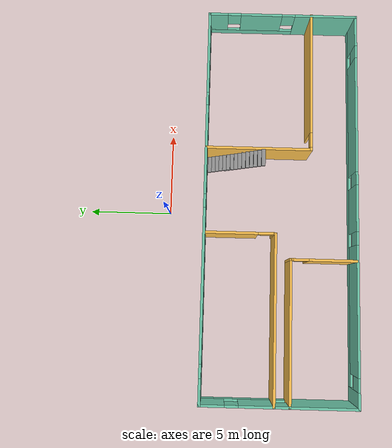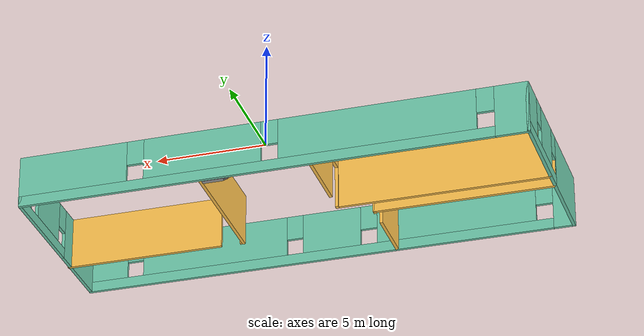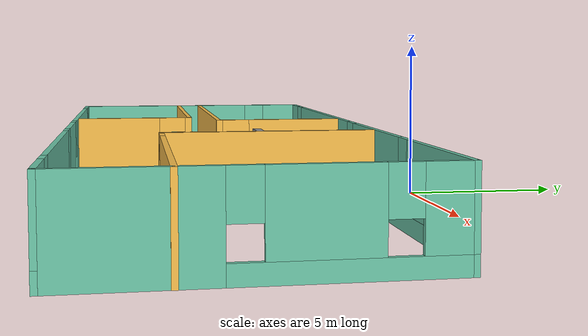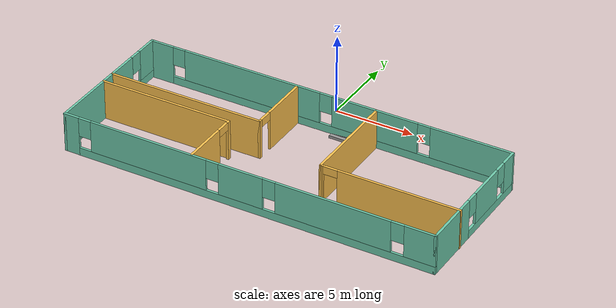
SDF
<?xml version='1.0'?>
<sdf version='1.6'>
  <model name='threeRooms'>
    <pose frame=''>0.591156 -6.7339 0 0 -0 0</pose>
    <link name='Stairs_1'>
      <visual name='Stairs_1_Visual_0'>
        <pose frame=''>2.65595 4.34252 0.083333 0 -0 0</pose>
        <geometry>
          <box>
            <size>1 0.233333 0.166667</size>
          </box>
        </geometry>
        <material>
          <script>
            <uri>file://media/materials/scripts/gazebo.material</uri>
            <name>Gazebo/Grey</name>
          </script>
          <ambient>1 1 1 1</ambient>
        </material>
        <meta>
          <layer>0</layer>
        </meta>
      </visual>
      <collision name='Stairs_1_Collision_0'>
        <geometry>
          <box>
            <size>1 0.233333 0.166667</size>
          </box>
        </geometry>
        <pose frame=''>2.65595 4.34252 0.083333 0 -0 0</pose>
      </collision>
      <visual name='Stairs_1_Visual_1'>
        <pose frame=''>2.65595 4.10918 0.25 0 -0 0</pose>
        <geometry>
          <box>
            <size>1 0.233333 0.166667</size>
          </box>
        </geometry>
        <material>
          <script>
            <uri>file://media/materials/scripts/gazebo.material</uri>
            <name>Gazebo/Grey</name>
          </script>
          <ambient>1 1 1 1</ambient>
        </material>
        <meta>
          <layer>0</layer>
        </meta>
      </visual>
      <collision name='Stairs_1_Collision_1'>
        <geometry>
          <box>
            <size>1 0.233333 0.166667</size>
          </box>
        </geometry>
        <pose frame=''>2.65595 4.10918 0.25 0 -0 0</pose>
      </collision>
      <visual name='Stairs_1_Visual_2'>
        <pose frame=''>2.65595 3.87585 0.416667 0 -0 0</pose>
        <geometry>
          <box>
            <size>1 0.233333 0.166667</size>
          </box>
        </geometry>
        <material>
          <script>
            <uri>file://media/materials/scripts/gazebo.material</uri>
            <name>Gazebo/Grey</name>
          </script>
          <ambient>1 1 1 1</ambient>
        </material>
        <meta>
          <layer>0</layer>
        </meta>
      </visual>
      <collision name='Stairs_1_Collision_2'>
        <geometry>
          <box>
            <size>1 0.233333 0.166667</size>
          </box>
        </geometry>
        <pose frame=''>2.65595 3.87585 0.416667 0 -0 0</pose>
      </collision>
      <visual name='Stairs_1_Visual_3'>
        <pose frame=''>2.65595 3.64252 0.583333 0 -0 0</pose>
        <geometry>
          <box>
            <size>1 0.233333 0.166667</size>
          </box>
        </geometry>
        <material>
          <script>
            <uri>file://media/materials/scripts/gazebo.material</uri>
            <name>Gazebo/Grey</name>
          </script>
          <ambient>1 1 1 1</ambient>
        </material>
        <meta>
          <layer>0</layer>
        </meta>
      </visual>
      <collision name='Stairs_1_Collision_3'>
        <geometry>
          <box>
            <size>1 0.233333 0.166667</size>
          </box>
        </geometry>
        <pose frame=''>2.65595 3.64252 0.583333 0 -0 0</pose>
      </collision>
      <visual name='Stairs_1_Visual_4'>
        <pose frame=''>2.65595 3.40918 0.75 0 -0 0</pose>
        <geometry>
          <box>
            <size>1 0.233333 0.166667</size>
          </box>
        </geometry>
        <material>
          <script>
            <uri>file://media/materials/scripts/gazebo.material</uri>
            <name>Gazebo/Grey</name>
          </script>
          <ambient>1 1 1 1</ambient>
        </material>
        <meta>
          <layer>0</layer>
        </meta>
      </visual>
      <collision name='Stairs_1_Collision_4'>
        <geometry>
          <box>
            <size>1 0.233333 0.166667</size>
          </box>
        </geometry>
        <pose frame=''>2.65595 3.40918 0.75 0 -0 0</pose>
      </collision>
      <visual name='Stairs_1_Visual_5'>
        <pose frame=''>2.65595 3.17585 0.916667 0 -0 0</pose>
        <geometry>
          <box>
            <size>1 0.233333 0.166667</size>
          </box>
        </geometry>
        <material>
          <script>
            <uri>file://media/materials/scripts/gazebo.material</uri>
            <name>Gazebo/Grey</name>
          </script>
          <ambient>1 1 1 1</ambient>
        </material>
        <meta>
          <layer>0</layer>
        </meta>
      </visual>
      <collision name='Stairs_1_Collision_5'>
        <geometry>
          <box>
            <size>1 0.233333 0.166667</size>
          </box>
        </geometry>
        <pose frame=''>2.65595 3.17585 0.916667 0 -0 0</pose>
      </collision>
      <visual name='Stairs_1_Visual_6'>
        <pose frame=''>2.65595 2.94252 1.08333 0 -0 0</pose>
        <geometry>
          <box>
            <size>1 0.233333 0.166667</size>
          </box>
        </geometry>
        <material>
          <script>
            <uri>file://media/materials/scripts/gazebo.material</uri>
            <name>Gazebo/Grey</name>
          </script>
          <ambient>1 1 1 1</ambient>
        </material>
        <meta>
          <layer>0</layer>
        </meta>
      </visual>
      <collision name='Stairs_1_Collision_6'>
        <geometry>
          <box>
            <size>1 0.233333 0.166667</size>
          </box>
        </geometry>
        <pose frame=''>2.65595 2.94252 1.08333 0 -0 0</pose>
      </collision>
      <visual name='Stairs_1_Visual_7'>
        <pose frame=''>2.65595 2.70918 1.25 0 -0 0</pose>
        <geometry>
          <box>
            <size>1 0.233333 0.166667</size>
          </box>
        </geometry>
        <material>
          <script>
            <uri>file://media/materials/scripts/gazebo.material</uri>
            <name>Gazebo/Grey</name>
          </script>
          <ambient>1 1 1 1</ambient>
        </material>
        <meta>
          <layer>0</layer>
        </meta>
      </visual>
      <collision name='Stairs_1_Collision_7'>
        <geometry>
          <box>
            <size>1 0.233333 0.166667</size>
          </box>
        </geometry>
        <pose frame=''>2.65595 2.70918 1.25 0 -0 0</pose>
      </collision>
      <visual name='Stairs_1_Visual_8'>
        <pose frame=''>2.65595 2.47585 1.41667 0 -0 0</pose>
        <geometry>
          <box>
            <size>1 0.233333 0.166667</size>
          </box>
        </geometry>
        <material>
          <script>
            <uri>file://media/materials/scripts/gazebo.material</uri>
            <name>Gazebo/Grey</name>
          </script>
          <ambient>1 1 1 1</ambient>
        </material>
        <meta>
          <layer>0</layer>
        </meta>
      </visual>
      <collision name='Stairs_1_Collision_8'>
        <geometry>
          <box>
            <size>1 0.233333 0.166667</size>
          </box>
        </geometry>
        <pose frame=''>2.65595 2.47585 1.41667 0 -0 0</pose>
      </collision>
      <visual name='Stairs_1_Visual_9'>
        <pose frame=''>2.65595 2.24252 1.58333 0 -0 0</pose>
        <geometry>
          <box>
            <size>1 0.233333 0.166667</size>
          </box>
        </geometry>
        <material>
          <script>
            <uri>file://media/materials/scripts/gazebo.material</uri>
            <name>Gazebo/Grey</name>
          </script>
          <ambient>1 1 1 1</ambient>
        </material>
        <meta>
          <layer>0</layer>
        </meta>
      </visual>
      <collision name='Stairs_1_Collision_9'>
        <geometry>
          <box>
            <size>1 0.233333 0.166667</size>
          </box>
        </geometry>
        <pose frame=''>2.65595 2.24252 1.58333 0 -0 0</pose>
      </collision>
      <visual name='Stairs_1_Visual_10'>
        <pose frame=''>2.65595 2.00918 1.75 0 -0 0</pose>
        <geometry>
          <box>
            <size>1 0.233333 0.166667</size>
          </box>
        </geometry>
        <material>
          <script>
            <uri>file://media/materials/scripts/gazebo.material</uri>
            <name>Gazebo/Grey</name>
          </script>
          <ambient>1 1 1 1</ambient>
        </material>
        <meta>
          <layer>0</layer>
        </meta>
      </visual>
      <collision name='Stairs_1_Collision_10'>
        <geometry>
          <box>
            <size>1 0.233333 0.166667</size>
          </box>
        </geometry>
        <pose frame=''>2.65595 2.00918 1.75 0 -0 0</pose>
      </collision>
      <visual name='Stairs_1_Visual_11'>
        <pose frame=''>2.65595 1.77585 1.91667 0 -0 0</pose>
        <geometry>
          <box>
            <size>1 0.233333 0.166667</size>
          </box>
        </geometry>
        <material>
          <script>
            <uri>file://media/materials/scripts/gazebo.material</uri>
            <name>Gazebo/Grey</name>
          </script>
          <ambient>1 1 1 1</ambient>
        </material>
        <meta>
          <layer>0</layer>
        </meta>
      </visual>
      <collision name='Stairs_1_Collision_11'>
        <geometry>
          <box>
            <size>1 0.233333 0.166667</size>
          </box>
        </geometry>
        <pose frame=''>2.65595 1.77585 1.91667 0 -0 0</pose>
      </collision>
      <visual name='Stairs_1_Visual_12'>
        <pose frame=''>2.65595 1.54252 2.08333 0 -0 0</pose>
        <geometry>
          <box>
            <size>1 0.233333 0.166667</size>
          </box>
        </geometry>
        <material>
          <script>
            <uri>file://media/materials/scripts/gazebo.material</uri>
            <name>Gazebo/Grey</name>
          </script>
          <ambient>1 1 1 1</ambient>
        </material>
        <meta>
          <layer>0</layer>
        </meta>
      </visual>
      <collision name='Stairs_1_Collision_12'>
        <geometry>
          <box>
            <size>1 0.233333 0.166667</size>
          </box>
        </geometry>
        <pose frame=''>2.65595 1.54252 2.08333 0 -0 0</pose>
      </collision>
      <visual name='Stairs_1_Visual_13'>
        <pose frame=''>2.65595 1.30918 2.25 0 -0 0</pose>
        <geometry>
          <box>
            <size>1 0.233333 0.166667</size>
          </box>
        </geometry>
        <material>
          <script>
            <uri>file://media/materials/scripts/gazebo.material</uri>
            <name>Gazebo/Grey</name>
          </script>
          <ambient>1 1 1 1</ambient>
        </material>
        <meta>
          <layer>0</layer>
        </meta>
      </visual>
      <collision name='Stairs_1_Collision_13'>
        <geometry>
          <box>
            <size>1 0.233333 0.166667</size>
          </box>
        </geometry>
        <pose frame=''>2.65595 1.30918 2.25 0 -0 0</pose>
      </collision>
      <visual name='Stairs_1_Visual_14'>
        <pose frame=''>2.65595 1.07585 2.41667 0 -0 0</pose>
        <geometry>
          <box>
            <size>1 0.233333 0.166667</size>
          </box>
        </geometry>
        <material>
          <script>
            <uri>file://media/materials/scripts/gazebo.material</uri>
            <name>Gazebo/Grey</name>
          </script>
          <ambient>1 1 1 1</ambient>
        </material>
        <meta>
          <layer>0</layer>
        </meta>
      </visual>
      <collision name='Stairs_1_Collision_14'>
        <geometry>
          <box>
            <size>1 0.233333 0.166667</size>
          </box>
        </geometry>
        <pose frame=''>2.65595 1.07585 2.41667 0 -0 0</pose>
      </collision>
    </link>
    <link name='Wall_40'>
      <pose frame=''>-0.014556 -4.55 0 0 -0 0</pose>
      <visual name='Wall_40_Visual_0'>
        <pose frame=''>-11.3725 0 1.25 0 -0 0</pose>
        <geometry>
          <box>
            <size>1.00501 0.15 2.5</size>
          </box>
        </geometry>
        <material>
          <script>
            <uri>file://media/materials/scripts/gazebo.material</uri>
            <name>Gazebo/Grey</name>
          </script>
          <ambient>0.435294 0.796078 0.67451 1</ambient>
        </material>
        <meta>
          <layer>0</layer>
        </meta>
      </visual>
      <collision name='Wall_40_Collision_0'>
        <geometry>
          <box>
            <size>1.00501 0.15 2.5</size>
          </box>
        </geometry>
        <pose frame=''>-11.3725 0 1.25 0 -0 0</pose>
      </collision>
      <visual name='Wall_40_Visual_1'>
        <pose frame=''>0.502505 0 0.25 0 -0 0</pose>
        <geometry>
          <box>
            <size>22.745 0.15 0.5</size>
          </box>
        </geometry>
        <material>
          <script>
            <uri>file://media/materials/scripts/gazebo.material</uri>
            <name>Gazebo/Grey</name>
          </script>
          <ambient>0.435294 0.796078 0.67451 1</ambient>
        </material>
        <meta>
          <layer>0</layer>
        </meta>
      </visual>
      <collision name='Wall_40_Collision_1'>
        <geometry>
          <box>
            <size>22.745 0.15 0.5</size>
          </box>
        </geometry>
        <pose frame=''>0.502505 0 0.25 0 -0 0</pose>
      </collision>
      <visual name='Wall_40_Visual_2'>
        <pose frame=''>-6.26716 0 1.5 0 -0 0</pose>
        <geometry>
          <box>
            <size>7.60566 0.15 2</size>
          </box>
        </geometry>
        <material>
          <script>
            <uri>file://media/materials/scripts/gazebo.material</uri>
            <name>Gazebo/Grey</name>
          </script>
          <ambient>0.435294 0.796078 0.67451 1</ambient>
        </material>
        <meta>
          <layer>0</layer>
        </meta>
      </visual>
      <collision name='Wall_40_Collision_2'>
        <geometry>
          <box>
            <size>7.60566 0.15 2</size>
          </box>
        </geometry>
        <pose frame=''>-6.26716 0 1.5 0 -0 0</pose>
      </collision>
      <visual name='Wall_40_Visual_3'>
        <pose frame=''>-0.255514 0 1.5 0 -0 0</pose>
        <geometry>
          <box>
            <size>2.81763 0.15 2</size>
          </box>
        </geometry>
        <material>
          <script>
            <uri>file://media/materials/scripts/gazebo.material</uri>
            <name>Gazebo/Grey</name>
          </script>
          <ambient>0.435294 0.796078 0.67451 1</ambient>
        </material>
        <meta>
          <layer>0</layer>
        </meta>
      </visual>
      <collision name='Wall_40_Collision_3'>
        <geometry>
          <box>
            <size>2.81763 0.15 2</size>
          </box>
        </geometry>
        <pose frame=''>-0.255514 0 1.5 0 -0 0</pose>
      </collision>
      <visual name='Wall_40_Visual_4'>
        <pose frame=''>5.54333 0 1.5 0 -0 0</pose>
        <geometry>
          <box>
            <size>7.18006 0.15 2</size>
          </box>
        </geometry>
        <material>
          <script>
            <uri>file://media/materials/scripts/gazebo.material</uri>
            <name>Gazebo/Grey</name>
          </script>
          <ambient>0.435294 0.796078 0.67451 1</ambient>
        </material>
        <meta>
          <layer>0</layer>
        </meta>
      </visual>
      <collision name='Wall_40_Collision_4'>
        <geometry>
          <box>
            <size>7.18006 0.15 2</size>
          </box>
        </geometry>
        <pose frame=''>5.54333 0 1.5 0 -0 0</pose>
      </collision>
      <visual name='Wall_40_Visual_5'>
        <pose frame=''>10.9042 0 1.5 0 -0 0</pose>
        <geometry>
          <box>
            <size>1.94164 0.15 2</size>
          </box>
        </geometry>
        <material>
          <script>
            <uri>file://media/materials/scripts/gazebo.material</uri>
            <name>Gazebo/Grey</name>
          </script>
          <ambient>0.435294 0.796078 0.67451 1</ambient>
        </material>
        <meta>
          <layer>0</layer>
        </meta>
      </visual>
      <collision name='Wall_40_Collision_5'>
        <geometry>
          <box>
            <size>1.94164 0.15 2</size>
          </box>
        </geometry>
        <pose frame=''>10.9042 0 1.5 0 -0 0</pose>
      </collision>
      <visual name='Wall_40_Visual_6'>
        <pose frame=''>-10.47 0 1.9 0 -0 0</pose>
        <geometry>
          <box>
            <size>0.8 0.15 1.2</size>
          </box>
        </geometry>
        <material>
          <script>
            <uri>file://media/materials/scripts/gazebo.material</uri>
            <name>Gazebo/Grey</name>
          </script>
          <ambient>0.435294 0.796078 0.67451 1</ambient>
        </material>
        <meta>
          <layer>0</layer>
        </meta>
      </visual>
      <collision name='Wall_40_Collision_6'>
        <geometry>
          <box>
            <size>0.8 0.15 1.2</size>
          </box>
        </geometry>
        <pose frame=''>-10.47 0 1.9 0 -0 0</pose>
      </collision>
      <visual name='Wall_40_Visual_7'>
        <pose frame=''>-2.06433 0 1.9 0 -0 0</pose>
        <geometry>
          <box>
            <size>0.8 0.15 1.2</size>
          </box>
        </geometry>
        <material>
          <script>
            <uri>file://media/materials/scripts/gazebo.material</uri>
            <name>Gazebo/Grey</name>
          </script>
          <ambient>0.435294 0.796078 0.67451 1</ambient>
        </material>
        <meta>
          <layer>0</layer>
        </meta>
      </visual>
      <collision name='Wall_40_Collision_7'>
        <geometry>
          <box>
            <size>0.8 0.15 1.2</size>
          </box>
        </geometry>
        <pose frame=''>-2.06433 0 1.9 0 -0 0</pose>
      </collision>
      <visual name='Wall_40_Visual_8'>
        <pose frame=''>1.5533 0 1.9 0 -0 0</pose>
        <geometry>
          <box>
            <size>0.8 0.15 1.2</size>
          </box>
        </geometry>
        <material>
          <script>
            <uri>file://media/materials/scripts/gazebo.material</uri>
            <name>Gazebo/Grey</name>
          </script>
          <ambient>0.435294 0.796078 0.67451 1</ambient>
        </material>
        <meta>
          <layer>0</layer>
        </meta>
      </visual>
      <collision name='Wall_40_Collision_8'>
        <geometry>
          <box>
            <size>0.8 0.15 1.2</size>
          </box>
        </geometry>
        <pose frame=''>1.5533 0 1.9 0 -0 0</pose>
      </collision>
      <visual name='Wall_40_Visual_9'>
        <pose frame=''>9.53336 0 1.9 0 -0 0</pose>
        <geometry>
          <box>
            <size>0.8 0.15 1.2</size>
          </box>
        </geometry>
        <material>
          <script>
            <uri>file://media/materials/scripts/gazebo.material</uri>
            <name>Gazebo/Grey</name>
          </script>
          <ambient>0.435294 0.796078 0.67451 1</ambient>
        </material>
        <meta>
          <layer>0</layer>
        </meta>
      </visual>
      <collision name='Wall_40_Collision_9'>
        <geometry>
          <box>
            <size>0.8 0.15 1.2</size>
          </box>
        </geometry>
        <pose frame=''>9.53336 0 1.9 0 -0 0</pose>
      </collision>
    </link>
    <link name='Wall_41'>
      <pose frame=''>11.7854 -0 0 0 -0 1.5708</pose>
      <visual name='Wall_41_Visual_0'>
        <pose frame=''>-2.70072 0 1.25 0 -0 0</pose>
        <geometry>
          <box>
            <size>3.84856 0.15 2.5</size>
          </box>
        </geometry>
        <material>
          <script>
            <uri>file://media/materials/scripts/gazebo.material</uri>
            <name>Gazebo/Grey</name>
          </script>
          <ambient>0.435294 0.796078 0.67451 1</ambient>
        </material>
        <meta>
          <layer>0</layer>
        </meta>
      </visual>
      <collision name='Wall_41_Collision_0'>
        <geometry>
          <box>
            <size>3.84856 0.15 2.5</size>
          </box>
        </geometry>
        <pose frame=''>-2.70072 0 1.25 0 -0 0</pose>
      </collision>
      <visual name='Wall_41_Visual_1'>
        <pose frame=''>1.92428 0 0.25 0 -0 0</pose>
        <geometry>
          <box>
            <size>5.40144 0.15 0.5</size>
          </box>
        </geometry>
        <material>
          <script>
            <uri>file://media/materials/scripts/gazebo.material</uri>
            <name>Gazebo/Grey</name>
          </script>
          <ambient>0.435294 0.796078 0.67451 1</ambient>
        </material>
        <meta>
          <layer>0</layer>
        </meta>
      </visual>
      <collision name='Wall_41_Collision_1'>
        <geometry>
          <box>
            <size>5.40144 0.15 0.5</size>
          </box>
        </geometry>
        <pose frame=''>1.92428 0 0.25 0 -0 0</pose>
      </collision>
      <visual name='Wall_41_Visual_2'>
        <pose frame=''>1.31267 0 1.5 0 -0 0</pose>
        <geometry>
          <box>
            <size>2.57823 0.15 2</size>
          </box>
        </geometry>
        <material>
          <script>
            <uri>file://media/materials/scripts/gazebo.material</uri>
            <name>Gazebo/Grey</name>
          </script>
          <ambient>0.435294 0.796078 0.67451 1</ambient>
        </material>
        <meta>
          <layer>0</layer>
        </meta>
      </visual>
      <collision name='Wall_41_Collision_2'>
        <geometry>
          <box>
            <size>2.57823 0.15 2</size>
          </box>
        </geometry>
        <pose frame=''>1.31267 0 1.5 0 -0 0</pose>
      </collision>
      <visual name='Wall_41_Visual_3'>
        <pose frame=''>4.01339 0 1.5 0 -0 0</pose>
        <geometry>
          <box>
            <size>1.22321 0.15 2</size>
          </box>
        </geometry>
        <material>
          <script>
            <uri>file://media/materials/scripts/gazebo.material</uri>
            <name>Gazebo/Grey</name>
          </script>
          <ambient>0.435294 0.796078 0.67451 1</ambient>
        </material>
        <meta>
          <layer>0</layer>
        </meta>
      </visual>
      <collision name='Wall_41_Collision_3'>
        <geometry>
          <box>
            <size>1.22321 0.15 2</size>
          </box>
        </geometry>
        <pose frame=''>4.01339 0 1.5 0 -0 0</pose>
      </collision>
      <visual name='Wall_41_Visual_4'>
        <pose frame=''>-0.376441 0 1.9 0 -0 0</pose>
        <geometry>
          <box>
            <size>0.8 0.15 1.2</size>
          </box>
        </geometry>
        <material>
          <script>
            <uri>file://media/materials/scripts/gazebo.material</uri>
            <name>Gazebo/Grey</name>
          </script>
          <ambient>0.435294 0.796078 0.67451 1</ambient>
        </material>
        <meta>
          <layer>0</layer>
        </meta>
      </visual>
      <collision name='Wall_41_Collision_4'>
        <geometry>
          <box>
            <size>0.8 0.15 1.2</size>
          </box>
        </geometry>
        <pose frame=''>-0.376441 0 1.9 0 -0 0</pose>
      </collision>
      <visual name='Wall_41_Visual_5'>
        <pose frame=''>3.00178 0 1.9 0 -0 0</pose>
        <geometry>
          <box>
            <size>0.8 0.15 1.2</size>
          </box>
        </geometry>
        <material>
          <script>
            <uri>file://media/materials/scripts/gazebo.material</uri>
            <name>Gazebo/Grey</name>
          </script>
          <ambient>0.435294 0.796078 0.67451 1</ambient>
        </material>
        <meta>
          <layer>0</layer>
        </meta>
      </visual>
      <collision name='Wall_41_Collision_5'>
        <geometry>
          <box>
            <size>0.8 0.15 1.2</size>
          </box>
        </geometry>
        <pose frame=''>3.00178 0 1.9 0 -0 0</pose>
      </collision>
    </link>
    <link name='Wall_44'>
      <pose frame=''>-11.8146 -0 0 0 -0 1.5708</pose>
      <visual name='Wall_44_Visual_0'>
        <pose frame=''>-2.59432 0 1.25 0 -0 0</pose>
        <geometry>
          <box>
            <size>4.06136 0.15 2.5</size>
          </box>
        </geometry>
        <material>
          <script>
            <uri>file://media/materials/scripts/gazebo.material</uri>
            <name>Gazebo/Grey</name>
          </script>
          <ambient>0.435294 0.796078 0.67451 1</ambient>
        </material>
        <meta>
          <layer>0</layer>
        </meta>
      </visual>
      <collision name='Wall_44_Collision_0'>
        <geometry>
          <box>
            <size>4.06136 0.15 2.5</size>
          </box>
        </geometry>
        <pose frame=''>-2.59432 0 1.25 0 -0 0</pose>
      </collision>
      <visual name='Wall_44_Visual_1'>
        <pose frame=''>2.03068 0 0.25 0 -0 0</pose>
        <geometry>
          <box>
            <size>5.18864 0.15 0.5</size>
          </box>
        </geometry>
        <material>
          <script>
            <uri>file://media/materials/scripts/gazebo.material</uri>
            <name>Gazebo/Grey</name>
          </script>
          <ambient>0.435294 0.796078 0.67451 1</ambient>
        </material>
        <meta>
          <layer>0</layer>
        </meta>
      </visual>
      <collision name='Wall_44_Collision_1'>
        <geometry>
          <box>
            <size>5.18864 0.15 0.5</size>
          </box>
        </geometry>
        <pose frame=''>2.03068 0 0.25 0 -0 0</pose>
      </collision>
      <visual name='Wall_44_Visual_2'>
        <pose frame=''>1.27277 0 1.5 0 -0 0</pose>
        <geometry>
          <box>
            <size>2.07282 0.15 2</size>
          </box>
        </geometry>
        <material>
          <script>
            <uri>file://media/materials/scripts/gazebo.material</uri>
            <name>Gazebo/Grey</name>
          </script>
          <ambient>0.435294 0.796078 0.67451 1</ambient>
        </material>
        <meta>
          <layer>0</layer>
        </meta>
      </visual>
      <collision name='Wall_44_Collision_2'>
        <geometry>
          <box>
            <size>2.07282 0.15 2</size>
          </box>
        </geometry>
        <pose frame=''>1.27277 0 1.5 0 -0 0</pose>
      </collision>
      <visual name='Wall_44_Visual_3'>
        <pose frame=''>3.86709 0 1.5 0 -0 0</pose>
        <geometry>
          <box>
            <size>1.51582 0.15 2</size>
          </box>
        </geometry>
        <material>
          <script>
            <uri>file://media/materials/scripts/gazebo.material</uri>
            <name>Gazebo/Grey</name>
          </script>
          <ambient>0.435294 0.796078 0.67451 1</ambient>
        </material>
        <meta>
          <layer>0</layer>
        </meta>
      </visual>
      <collision name='Wall_44_Collision_3'>
        <geometry>
          <box>
            <size>1.51582 0.15 2</size>
          </box>
        </geometry>
        <pose frame=''>3.86709 0 1.5 0 -0 0</pose>
      </collision>
      <visual name='Wall_44_Visual_4'>
        <pose frame=''>-0.163639 0 1.9 0 -0 0</pose>
        <geometry>
          <box>
            <size>0.8 0.15 1.2</size>
          </box>
        </geometry>
        <material>
          <script>
            <uri>file://media/materials/scripts/gazebo.material</uri>
            <name>Gazebo/Grey</name>
          </script>
          <ambient>0.435294 0.796078 0.67451 1</ambient>
        </material>
        <meta>
          <layer>0</layer>
        </meta>
      </visual>
      <collision name='Wall_44_Collision_4'>
        <geometry>
          <box>
            <size>0.8 0.15 1.2</size>
          </box>
        </geometry>
        <pose frame=''>-0.163639 0 1.9 0 -0 0</pose>
      </collision>
      <visual name='Wall_44_Visual_5'>
        <pose frame=''>2.70918 0 1.9 0 -0 0</pose>
        <geometry>
          <box>
            <size>0.8 0.15 1.2</size>
          </box>
        </geometry>
        <material>
          <script>
            <uri>file://media/materials/scripts/gazebo.material</uri>
            <name>Gazebo/Grey</name>
          </script>
          <ambient>0.435294 0.796078 0.67451 1</ambient>
        </material>
        <meta>
          <layer>0</layer>
        </meta>
      </visual>
      <collision name='Wall_44_Collision_5'>
        <geometry>
          <box>
            <size>0.8 0.15 1.2</size>
          </box>
        </geometry>
        <pose frame=''>2.70918 0 1.9 0 -0 0</pose>
      </collision>
    </link>
    <link name='Wall_45'>
      <pose frame=''>-0.014556 4.55 0 0 -0 0</pose>
      <visual name='Wall_45_Visual_0'>
        <pose frame=''>-11.0932 0 1.25 0 -0 0</pose>
        <geometry>
          <box>
            <size>1.56361 0.15 2.5</size>
          </box>
        </geometry>
        <material>
          <script>
            <uri>file://media/materials/scripts/gazebo.material</uri>
            <name>Gazebo/Grey</name>
          </script>
          <ambient>0.435294 0.796078 0.67451 1</ambient>
        </material>
        <meta>
          <layer>0</layer>
        </meta>
      </visual>
      <collision name='Wall_45_Collision_0'>
        <geometry>
          <box>
            <size>1.56361 0.15 2.5</size>
          </box>
        </geometry>
        <pose frame=''>-11.0932 0 1.25 0 -0 0</pose>
      </collision>
      <visual name='Wall_45_Visual_1'>
        <pose frame=''>0.781807 0 0.25 0 -0 0</pose>
        <geometry>
          <box>
            <size>22.1864 0.15 0.5</size>
          </box>
        </geometry>
        <material>
          <script>
            <uri>file://media/materials/scripts/gazebo.material</uri>
            <name>Gazebo/Grey</name>
          </script>
          <ambient>0.435294 0.796078 0.67451 1</ambient>
        </material>
        <meta>
          <layer>0</layer>
        </meta>
      </visual>
      <collision name='Wall_45_Collision_1'>
        <geometry>
          <box>
            <size>22.1864 0.15 0.5</size>
          </box>
        </geometry>
        <pose frame=''>0.781807 0 0.25 0 -0 0</pose>
      </collision>
      <visual name='Wall_45_Visual_2'>
        <pose frame=''>-4.97705 0 1.5 0 -0 0</pose>
        <geometry>
          <box>
            <size>9.06867 0.15 2</size>
          </box>
        </geometry>
        <material>
          <script>
            <uri>file://media/materials/scripts/gazebo.material</uri>
            <name>Gazebo/Grey</name>
          </script>
          <ambient>0.435294 0.796078 0.67451 1</ambient>
        </material>
        <meta>
          <layer>0</layer>
        </meta>
      </visual>
      <collision name='Wall_45_Collision_2'>
        <geometry>
          <box>
            <size>9.06867 0.15 2</size>
          </box>
        </geometry>
        <pose frame=''>-4.97705 0 1.5 0 -0 0</pose>
      </collision>
      <visual name='Wall_45_Visual_3'>
        <pose frame=''>3.12271 0 1.5 0 -0 0</pose>
        <geometry>
          <box>
            <size>5.53085 0.15 2</size>
          </box>
        </geometry>
        <material>
          <script>
            <uri>file://media/materials/scripts/gazebo.material</uri>
            <name>Gazebo/Grey</name>
          </script>
          <ambient>0.435294 0.796078 0.67451 1</ambient>
        </material>
        <meta>
          <layer>0</layer>
        </meta>
      </visual>
      <collision name='Wall_45_Collision_3'>
        <geometry>
          <box>
            <size>5.53085 0.15 2</size>
          </box>
        </geometry>
        <pose frame=''>3.12271 0 1.5 0 -0 0</pose>
      </collision>
      <visual name='Wall_45_Visual_4'>
        <pose frame=''>9.28157 0 1.5 0 -0 0</pose>
        <geometry>
          <box>
            <size>5.18687 0.15 2</size>
          </box>
        </geometry>
        <material>
          <script>
            <uri>file://media/materials/scripts/gazebo.material</uri>
            <name>Gazebo/Grey</name>
          </script>
          <ambient>0.435294 0.796078 0.67451 1</ambient>
        </material>
        <meta>
          <layer>0</layer>
        </meta>
      </visual>
      <collision name='Wall_45_Collision_4'>
        <geometry>
          <box>
            <size>5.18687 0.15 2</size>
          </box>
        </geometry>
        <pose frame=''>9.28157 0 1.5 0 -0 0</pose>
      </collision>
      <visual name='Wall_45_Visual_5'>
        <pose frame=''>-9.91139 0 1.9 0 -0 0</pose>
        <geometry>
          <box>
            <size>0.8 0.15 1.2</size>
          </box>
        </geometry>
        <material>
          <script>
            <uri>file://media/materials/scripts/gazebo.material</uri>
            <name>Gazebo/Grey</name>
          </script>
          <ambient>0.435294 0.796078 0.67451 1</ambient>
        </material>
        <meta>
          <layer>0</layer>
        </meta>
      </visual>
      <collision name='Wall_45_Collision_5'>
        <geometry>
          <box>
            <size>0.8 0.15 1.2</size>
          </box>
        </geometry>
        <pose frame=''>-9.91139 0 1.9 0 -0 0</pose>
      </collision>
      <visual name='Wall_45_Visual_6'>
        <pose frame=''>-0.042712 0 1.9 0 -0 0</pose>
        <geometry>
          <box>
            <size>0.8 0.15 1.2</size>
          </box>
        </geometry>
        <material>
          <script>
            <uri>file://media/materials/scripts/gazebo.material</uri>
            <name>Gazebo/Grey</name>
          </script>
          <ambient>0.435294 0.796078 0.67451 1</ambient>
        </material>
        <meta>
          <layer>0</layer>
        </meta>
      </visual>
      <collision name='Wall_45_Collision_6'>
        <geometry>
          <box>
            <size>0.8 0.15 1.2</size>
          </box>
        </geometry>
        <pose frame=''>-0.042712 0 1.9 0 -0 0</pose>
      </collision>
      <visual name='Wall_45_Visual_7'>
        <pose frame=''>6.28813 0 1.9 0 -0 0</pose>
        <geometry>
          <box>
            <size>0.8 0.15 1.2</size>
          </box>
        </geometry>
        <material>
          <script>
            <uri>file://media/materials/scripts/gazebo.material</uri>
            <name>Gazebo/Grey</name>
          </script>
          <ambient>0.435294 0.796078 0.67451 1</ambient>
        </material>
        <meta>
          <layer>0</layer>
        </meta>
      </visual>
      <collision name='Wall_45_Collision_7'>
        <geometry>
          <box>
            <size>0.8 0.15 1.2</size>
          </box>
        </geometry>
        <pose frame=''>6.28813 0 1.9 0 -0 0</pose>
      </collision>
    </link>
    <link name='Wall_47'>
      <collision name='Wall_47_Collision'>
        <geometry>
          <box>
            <size>10 0.15 2.5</size>
          </box>
        </geometry>
        <pose frame=''>0 0 1.25 0 -0 0</pose>
      </collision>
      <visual name='Wall_47_Visual'>
        <pose frame=''>0 0 1.25 0 -0 0</pose>
        <geometry>
          <box>
            <size>10 0.15 2.5</size>
          </box>
        </geometry>
        <material>
          <script>
            <uri>file://media/materials/scripts/gazebo.material</uri>
            <name>Gazebo/Grey</name>
          </script>
          <ambient>1 0.764706 0.305882 1</ambient>
        </material>
        <meta>
          <layer>0</layer>
        </meta>
      </visual>
      <pose frame=''>-6.86296 0.288564 0 0 -0 0</pose>
    </link>
    <link name='Wall_48'>
      <pose frame=''>-1.93796 2.33856 0 0 -0 1.5708</pose>
      <visual name='Wall_48_Visual_0'>
        <pose frame=''>-2.0199 0 1.25 0 -0 0</pose>
        <geometry>
          <box>
            <size>0.210204 0.15 2.5</size>
          </box>
        </geometry>
        <material>
          <script>
            <uri>file://media/materials/scripts/gazebo.material</uri>
            <name>Gazebo/Grey</name>
          </script>
          <ambient>1 0.764706 0.305882 1</ambient>
        </material>
        <meta>
          <layer>0</layer>
        </meta>
      </visual>
      <collision name='Wall_48_Collision_0'>
        <geometry>
          <box>
            <size>0.210204 0.15 2.5</size>
          </box>
        </geometry>
        <pose frame=''>-2.0199 0 1.25 0 -0 0</pose>
      </collision>
      <visual name='Wall_48_Visual_1'>
        <pose frame=''>0.555102 0 1.25 0 -0 0</pose>
        <geometry>
          <box>
            <size>3.1398 0.15 2.5</size>
          </box>
        </geometry>
        <material>
          <script>
            <uri>file://media/materials/scripts/gazebo.material</uri>
            <name>Gazebo/Grey</name>
          </script>
          <ambient>1 0.764706 0.305882 1</ambient>
        </material>
        <meta>
          <layer>0</layer>
        </meta>
      </visual>
      <collision name='Wall_48_Collision_1'>
        <geometry>
          <box>
            <size>3.1398 0.15 2.5</size>
          </box>
        </geometry>
        <pose frame=''>0.555102 0 1.25 0 -0 0</pose>
      </collision>
      <visual name='Wall_48_Visual_2'>
        <pose frame=''>-1.4648 0 2.25 0 -0 0</pose>
        <geometry>
          <box>
            <size>0.9 0.15 0.5</size>
          </box>
        </geometry>
        <material>
          <script>
            <uri>file://media/materials/scripts/gazebo.material</uri>
            <name>Gazebo/Grey</name>
          </script>
          <ambient>1 0.764706 0.305882 1</ambient>
        </material>
        <meta>
          <layer>0</layer>
        </meta>
      </visual>
      <collision name='Wall_48_Collision_2'>
        <geometry>
          <box>
            <size>0.9 0.15 0.5</size>
          </box>
        </geometry>
        <pose frame=''>-1.4648 0 2.25 0 -0 0</pose>
      </collision>
    </link>
    <link name='Wall_50'>
      <collision name='Wall_50_Collision'>
        <geometry>
          <box>
            <size>8.5 0.15 2.5</size>
          </box>
        </geometry>
        <pose frame=''>0 0 1.25 0 -0 0</pose>
      </collision>
      <visual name='Wall_50_Visual'>
        <pose frame=''>0 0 1.25 0 -0 0</pose>
        <geometry>
          <box>
            <size>8.5 0.15 2.5</size>
          </box>
        </geometry>
        <material>
          <script>
            <uri>file://media/materials/scripts/gazebo.material</uri>
            <name>Gazebo/Grey</name>
          </script>
          <ambient>1 0.764706 0.305882 1</ambient>
        </material>
        <meta>
          <layer>0</layer>
        </meta>
      </visual>
      <pose frame=''>-7.61296 -0.615843 0 0 -0 0</pose>
    </link>
    <link name='Wall_51'>
      <pose frame=''>-3.43796 -2.54084 0 0 -0 -1.5708</pose>
      <visual name='Wall_51_Visual_0'>
        <pose frame=''>-1.8816 0 1.25 0 -0 0</pose>
        <geometry>
          <box>
            <size>0.236805 0.15 2.5</size>
          </box>
        </geometry>
        <material>
          <script>
            <uri>file://media/materials/scripts/gazebo.material</uri>
            <name>Gazebo/Grey</name>
          </script>
          <ambient>1 0.764706 0.305882 1</ambient>
        </material>
        <meta>
          <layer>0</layer>
        </meta>
      </visual>
      <collision name='Wall_51_Collision_0'>
        <geometry>
          <box>
            <size>0.236805 0.15 2.5</size>
          </box>
        </geometry>
        <pose frame=''>-1.8816 0 1.25 0 -0 0</pose>
      </collision>
      <visual name='Wall_51_Visual_1'>
        <pose frame=''>0.568402 0 1.25 0 -0 0</pose>
        <geometry>
          <box>
            <size>2.8632 0.15 2.5</size>
          </box>
        </geometry>
        <material>
          <script>
            <uri>file://media/materials/scripts/gazebo.material</uri>
            <name>Gazebo/Grey</name>
          </script>
          <ambient>1 0.764706 0.305882 1</ambient>
        </material>
        <meta>
          <layer>0</layer>
        </meta>
      </visual>
      <collision name='Wall_51_Collision_1'>
        <geometry>
          <box>
            <size>2.8632 0.15 2.5</size>
          </box>
        </geometry>
        <pose frame=''>0.568402 0 1.25 0 -0 0</pose>
      </collision>
      <visual name='Wall_51_Visual_2'>
        <pose frame=''>-1.31319 0 2.25 0 -0 0</pose>
        <geometry>
          <box>
            <size>0.9 0.15 0.5</size>
          </box>
        </geometry>
        <material>
          <script>
            <uri>file://media/materials/scripts/gazebo.material</uri>
            <name>Gazebo/Grey</name>
          </script>
          <ambient>1 0.764706 0.305882 1</ambient>
        </material>
        <meta>
          <layer>0</layer>
        </meta>
      </visual>
      <collision name='Wall_51_Collision_2'>
        <geometry>
          <box>
            <size>0.9 0.15 0.5</size>
          </box>
        </geometry>
        <pose frame=''>-1.31319 0 2.25 0 -0 0</pose>
      </collision>
    </link>
    <link name='Wall_53'>
      <collision name='Wall_53_Collision'>
        <geometry>
          <box>
            <size>6.5 0.15 2.5</size>
          </box>
        </geometry>
        <pose frame=''>0 0 1.25 0 -0 0</pose>
      </collision>
      <visual name='Wall_53_Visual'>
        <pose frame=''>0 0 1.25 0 -0 0</pose>
        <geometry>
          <box>
            <size>6.5 0.15 2.5</size>
          </box>
        </geometry>
        <material>
          <script>
            <uri>file://media/materials/scripts/gazebo.material</uri>
            <name>Gazebo/Grey</name>
          </script>
          <ambient>1 0.764706 0.305882 1</ambient>
        </material>
        <meta>
          <layer>0</layer>
        </meta>
      </visual>
      <pose frame=''>3.21456 1.3696 0 0 -0 -1.5708</pose>
    </link>
    <link name='Wall_56'>
      <pose frame=''>7.51456 -1.8054 0 0 -0 0</pose>
      <visual name='Wall_56_Visual_0'>
        <pose frame=''>-4.2566 0 1.25 0 -0 0</pose>
        <geometry>
          <box>
            <size>0.236805 0.15 2.5</size>
          </box>
        </geometry>
        <material>
          <script>
            <uri>file://media/materials/scripts/gazebo.material</uri>
            <name>Gazebo/Grey</name>
          </script>
          <ambient>1 0.764706 0.305882 1</ambient>
        </material>
        <meta>
          <layer>0</layer>
        </meta>
      </visual>
      <collision name='Wall_56_Collision_0'>
        <geometry>
          <box>
            <size>0.236805 0.15 2.5</size>
          </box>
        </geometry>
        <pose frame=''>-4.2566 0 1.25 0 -0 0</pose>
      </collision>
      <visual name='Wall_56_Visual_1'>
        <pose frame=''>0.568402 0 1.25 0 -0 0</pose>
        <geometry>
          <box>
            <size>7.6132 0.15 2.5</size>
          </box>
        </geometry>
        <material>
          <script>
            <uri>file://media/materials/scripts/gazebo.material</uri>
            <name>Gazebo/Grey</name>
          </script>
          <ambient>1 0.764706 0.305882 1</ambient>
        </material>
        <meta>
          <layer>0</layer>
        </meta>
      </visual>
      <collision name='Wall_56_Collision_1'>
        <geometry>
          <box>
            <size>7.6132 0.15 2.5</size>
          </box>
        </geometry>
        <pose frame=''>0.568402 0 1.25 0 -0 0</pose>
      </collision>
      <visual name='Wall_56_Visual_2'>
        <pose frame=''>-3.68819 0 2.25 0 -0 0</pose>
        <geometry>
          <box>
            <size>0.9 0.15 0.5</size>
          </box>
        </geometry>
        <material>
          <script>
            <uri>file://media/materials/scripts/gazebo.material</uri>
            <name>Gazebo/Grey</name>
          </script>
          <ambient>1 0.764706 0.305882 1</ambient>
        </material>
        <meta>
          <layer>0</layer>
        </meta>
      </visual>
      <collision name='Wall_56_Collision_2'>
        <geometry>
          <box>
            <size>0.9 0.15 0.5</size>
          </box>
        </geometry>
        <pose frame=''>-3.68819 0 2.25 0 -0 0</pose>
      </collision>
    </link>
    <static>1</static>
  </model>
</sdf>
